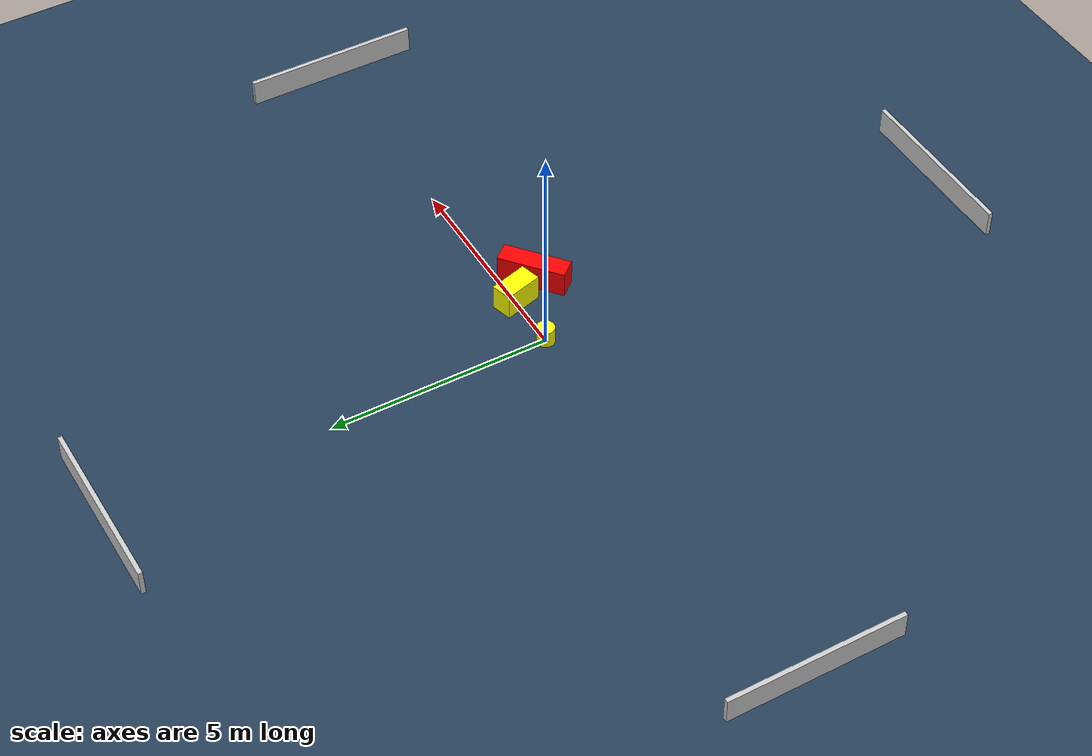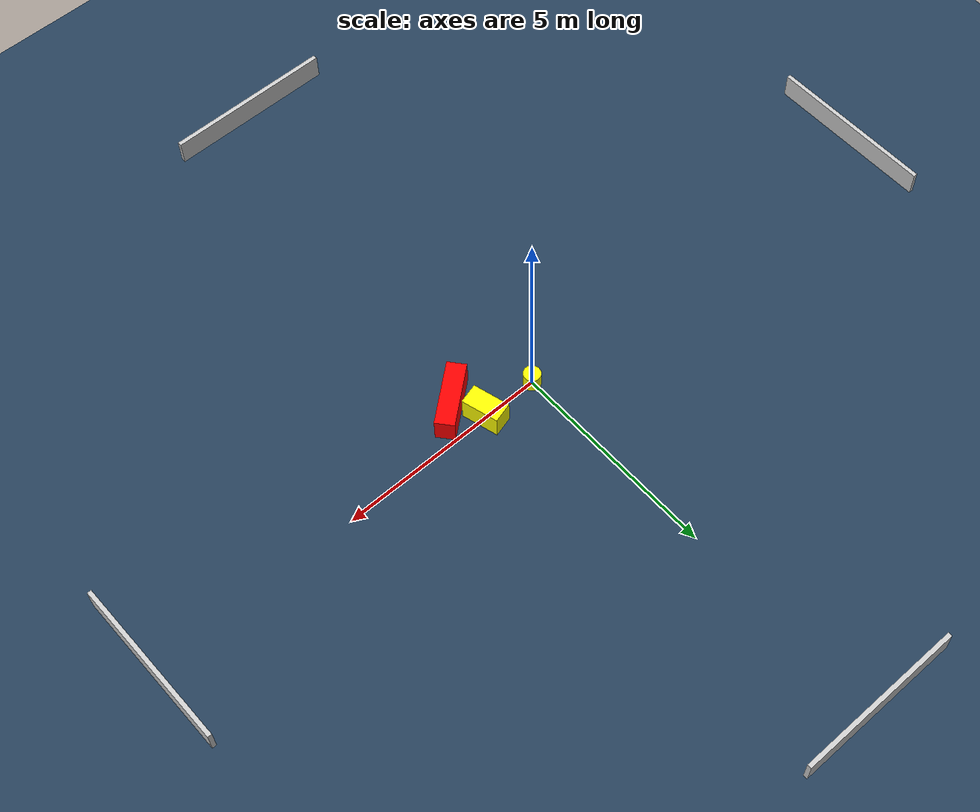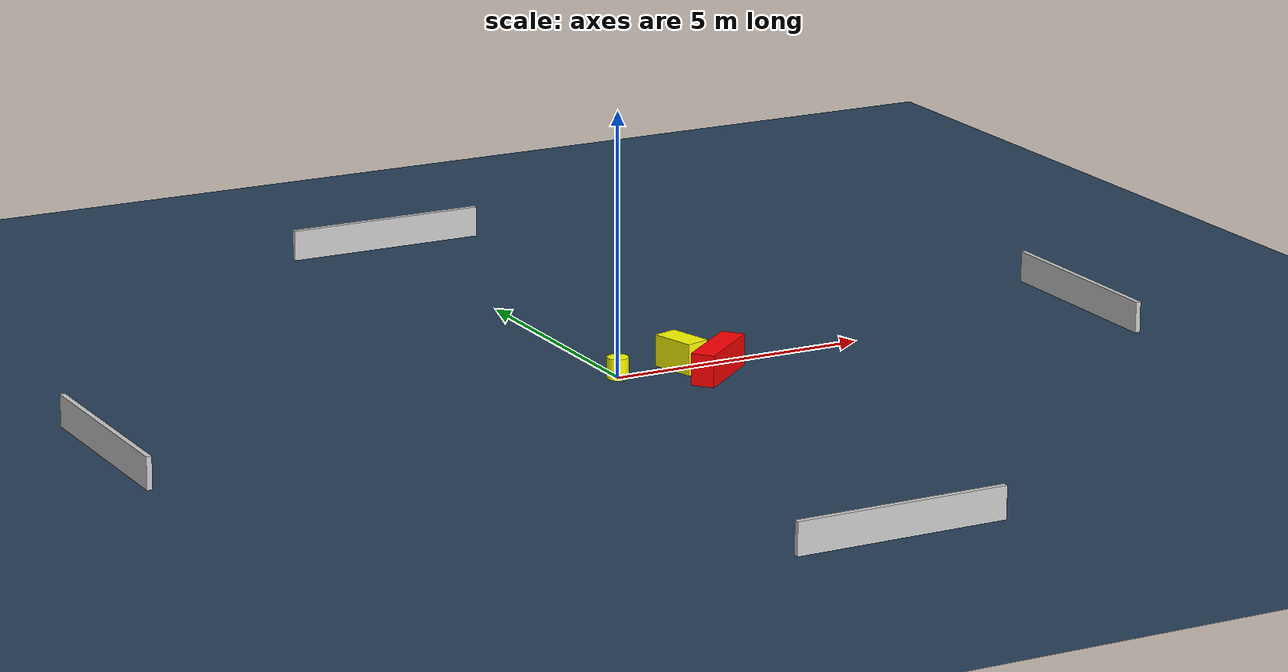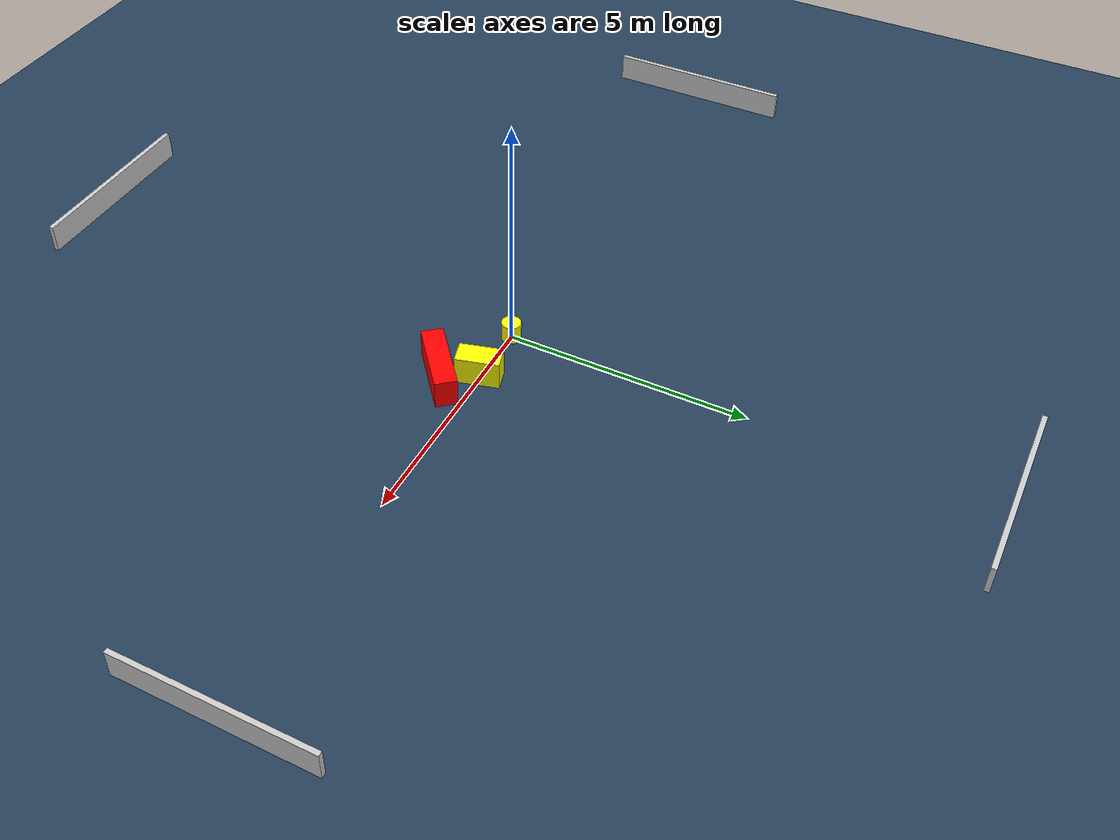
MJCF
<?xml version="1.0" ?>
<mujoco model="generated_environment">
  <option timestep="0.01" integrator="RK4" cone="elliptic"/>
  <default>
    <geom density="1"/>
  </default>
  <asset>
    <texture builtin="gradient" height="3072" name="skybox" rgb1="0.3 0.5 0.7" rgb2="0 0 0" type="skybox" width="512"/>
    <texture builtin="checker" height="300" name="groundplane" rgb1="0.2 0.3 0.4" rgb2="0.1 0.2 0.3" type="2d" width="300"/>
    <material name="groundplane" reflectance="0.2" texrepeat="5 5" texture="groundplane"/>
  </asset>
  <worldbody>
    <light dir="0 0 -1" directional="true" pos="0 0 1.5"/>
    <geom condim="3" friction="0.5 0.005 0.001" material="groundplane" name="floor" pos="0 0 0" size="0 0 0.05" type="plane"/>
    <body name="walls">
      <geom name="wall_1" condim="4" pos="-10.0 0.0 0.3" rgba="0.800000011920929 0.800000011920929 0.800000011920929 1.0" size="0.05 2.0 0.3" type="box"/>
      <geom name="wall_2" condim="4" pos="10.0 0.0 0.3" rgba="0.800000011920929 0.800000011920929 0.800000011920929 1.0" size="0.05 2.0 0.3" type="box"/>
      <geom name="wall_3" condim="4" pos="0.0 -10.0 0.3" rgba="0.800000011920929 0.800000011920929 0.800000011920929 1.0" size="2.0 0.05 0.3" type="box"/>
      <geom name="wall_4" condim="4" pos="0.0 10.0 0.3" rgba="0.800000011920929 0.800000011920929 0.800000011920929 1.0" size="2.0 0.05 0.3" type="box"/>
    </body>
    <body name="robot">
      <joint name="joint_x" type="slide" pos="0 0 0" axis="1 0 0"/>
      <joint name="joint_y" type="slide" pos="0 0 0" axis="0 1 0"/>
      <geom name="robot" type="cylinder" pos="0.0 0.0 0.2" size="0.2 0.2 0.0" mass="5.0" friction="1.0 0.005 0.0001" condim="4" rgba="1.0 1.0 0.0 1.0"/>
    </body>
    <body name="obstacle_1_movable">
      <geom name="obstacle_1_movable" condim="4" pos="1.3054914083086673 -0.0229262754455692 0.3" euler="0 0 285.3813048743894" friction="0.0 0.005 0.001" rgba="1.0 1.0 0.0 1.0" size="0.44263558335331127 0.23717106118098674 0.3" type="box" mass="0.1"/>
      <joint type="free"/>
    </body>
    <body name="obstacle_2_static">
      <geom name="obstacle_2_static" condim="4" pos="1.6970957246633183 -0.6938699521720055 0.3" euler="0 0 39.56395529317228" friction="0.0 0.005 0.001" rgba="1.0 0.0 0.0 1.0" size="0.7669668544655435 0.2249730671762673 0.3" type="box"/>
    </body>
  </worldbody>
  <actuator>
    <motor name="actuator_x" joint="joint_x" gear="1" ctrlrange="-1 1"/>
    <motor name="actuator_y" joint="joint_y" gear="1" ctrlrange="-1 1"/>
  </actuator>
</mujoco>
